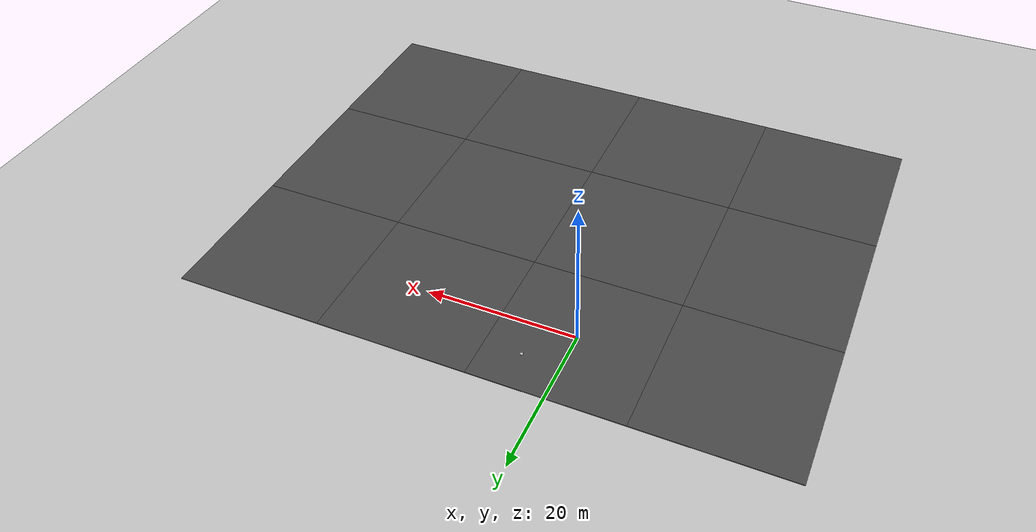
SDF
<sdf version="1.5">
 <world name="nsf-student-competition-test-world">
  <physics name="default_physics" default="0" type="ode">
   <max_step_size>0.001</max_step_size>
   <real_time_factor>1</real_time_factor>
   <real_time_update_rate>1000</real_time_update_rate>
   <gravity>0 0 -9.8</gravity>
   <magnetic_field>6e-06 2.3e-05 -4.2e-05</magnetic_field>
  </physics>
  <spherical_coordinates>
   <surface_model>EARTH_WGS84</surface_model>
   <latitude_deg>39.9413</latitude_deg>
   <longitude_deg>-75.1988</longitude_deg>
   <elevation>5.8</elevation>
   <heading_deg>5.458</heading_deg>
  </spherical_coordinates>
  <light name="sun" type="directional">
   <pose>0 0 10 0 -0 0</pose>
   <diffuse>0.8 0.8 0.8 1</diffuse>
   <specular>0.2 0.2 0.2 1</specular>
   <attenuation>
    <range>1000</range>
    <constant>0.9</constant>
    <linear>0.01</linear>
    <quadratic>0.001</quadratic>
   </attenuation>
   <direction>-0.5 0.1 -0.9</direction>
  </light>
  <model name="ground_plane">
   <static>1</static>
   <link name="link">
    <collision name="collision">
     <geometry><plane><normal>0 0 1</normal><size>100 100</size></plane></geometry>
     <surface><friction><ode><mu>100</mu><mu2>50</mu2></ode></friction></surface>
    </collision>
    <visual name="visual">
     <cast_shadows>0</cast_shadows>
     <geometry><plane><normal>0 0 1</normal><size>100 100</size></plane></geometry>
     <material>
      <script><uri>file://media/materials/scripts/gazebo.material</uri><name>Gazebo/Grey</name></script>
     </material>
    </visual>
   </link>
  </model>
  <model name="asphalt_plane">
   <static>1</static>
   <link name="link">
    <collision name="collision"><geometry><box><size>20 20 0.1</size></box></geometry></collision>
    <visual name="visual">
     <cast_shadows>0</cast_shadows>
     <geometry><box><size>20 20 0.1</size></box></geometry>
     <material>
      <script>
       <uri>model://asphalt_plane/materials/scripts</uri>
       <uri>model://asphalt_plane/materials/textures</uri>
       <name>vrc/asphalt</name>
      </script>
     </material>
    </visual>
   </link>
  </model>
  <model name="mosquito_trap">
   <pose>4.98919 5.00002 0.156586 -5e-06 -6e-06 0.000218</pose>
   <link name="link">
    <inertial>
     <mass>1</mass>
     <inertia><ixx>0.145833</ixx><ixy>0</ixy><ixz>0</ixz><iyy>0.145833</iyy><iyz>0</iyz><izz>0.125</izz></inertia>
    </inertial>
    <collision name="collision">
     <geometry><cylinder><radius>0.179215</radius><length>0.213191</length></cylinder></geometry>
    </collision>
    <visual name="visual">
     <geometry><cylinder><radius>0.179215</radius><length>0.213191</length></cylinder></geometry>
     <material>
      <script><name>Gazebo/White</name><uri>file://media/materials/scripts/gazebo.material</uri></script>
     </material>
    </visual>
   </link>
  </model>
  <scene><ambient>0.4 0.4 0.4 1</ambient><background>0.7 0.7 0.7 1</background><shadows>1</shadows></scene>
  <model name="asphalt_plane_0">
   <static>1</static>
   <link name="link">
    <collision name="collision"><geometry><box><size>20 20 0.1</size></box></geometry></collision>
    <visual name="visual">
     <cast_shadows>0</cast_shadows>
     <geometry><box><size>20 20 0.1</size></box></geometry>
     <material>
      <script>
       <uri>model://asphalt_plane/materials/scripts</uri>
       <uri>model://asphalt_plane/materials/textures</uri>
       <name>vrc/asphalt</name>
      </script>
     </material>
    </visual>
   </link>
   <pose>0 -20 0 0 -0 0</pose>
  </model>
  <model name="asphalt_plane_0_0">
   <static>1</static>
   <link name="link">
    <collision name="collision"><geometry><box><size>20 20 0.1</size></box></geometry></collision>
    <visual name="visual">
     <cast_shadows>0</cast_shadows>
     <geometry><box><size>20 20 0.1</size></box></geometry>
     <material>
      <script>
       <uri>model://asphalt_plane/materials/scripts</uri>
       <uri>model://asphalt_plane/materials/textures</uri>
       <name>vrc/asphalt</name>
      </script>
     </material>
    </visual>
   </link>
   <pose>20 0 0 0 -0 0</pose>
  </model>
  <model name="asphalt_plane_1">
   <static>1</static>
   <link name="link">
    <collision name="collision"><geometry><box><size>20 20 0.1</size></box></geometry></collision>
    <visual name="visual">
     <cast_shadows>0</cast_shadows>
     <geometry><box><size>20 20 0.1</size></box></geometry>
     <material>
      <script>
       <uri>model://asphalt_plane/materials/scripts</uri>
       <uri>model://asphalt_plane/materials/textures</uri>
       <name>vrc/asphalt</name>
      </script>
     </material>
    </visual>
   </link>
   <pose>20 -20 0 0 -0 0</pose>
  </model>
  <model name="asphalt_plane_2">
   <static>1</static>
   <link name="link">
    <collision name="collision"><geometry><box><size>20 20 0.1</size></box></geometry></collision>
    <visual name="visual">
     <cast_shadows>0</cast_shadows>
     <geometry><box><size>20 20 0.1</size></box></geometry>
     <material>
      <script>
       <uri>model://asphalt_plane/materials/scripts</uri>
       <uri>model://asphalt_plane/materials/textures</uri>
       <name>vrc/asphalt</name>
      </script>
     </material>
    </visual>
   </link>
   <pose>40 0 0 0 -0 0</pose>
  </model>
  <model name="asphalt_plane_3">
   <static>1</static>
   <link name="link">
    <collision name="collision"><geometry><box><size>20 20 0.1</size></box></geometry></collision>
    <visual name="visual">
     <cast_shadows>0</cast_shadows>
     <geometry><box><size>20 20 0.1</size></box></geometry>
     <material>
      <script>
       <uri>model://asphalt_plane/materials/scripts</uri>
       <uri>model://asphalt_plane/materials/textures</uri>
       <name>vrc/asphalt</name>
      </script>
     </material>
    </visual>
   </link>
   <pose>40 -20 0 0 -0 0</pose>
  </model>
  <model name="asphalt_plane_4">
   <static>1</static>
   <link name="link">
    <collision name="collision"><geometry><box><size>20 20 0.1</size></box></geometry></collision>
    <visual name="visual">
     <cast_shadows>0</cast_shadows>
     <geometry><box><size>20 20 0.1</size></box></geometry>
     <material>
      <script>
       <uri>model://asphalt_plane/materials/scripts</uri>
       <uri>model://asphalt_plane/materials/textures</uri>
       <name>vrc/asphalt</name>
      </script>
     </material>
    </visual>
   </link>
   <pose>40 -40 0 0 -0 0</pose>
  </model>
  <model name="asphalt_plane_5">
   <static>1</static>
   <link name="link">
    <collision name="collision"><geometry><box><size>20 20 0.1</size></box></geometry></collision>
    <visual name="visual">
     <cast_shadows>0</cast_shadows>
     <geometry><box><size>20 20 0.1</size></box></geometry>
     <material>
      <script>
       <uri>model://asphalt_plane/materials/scripts</uri>
       <uri>model://asphalt_plane/materials/textures</uri>
       <name>vrc/asphalt</name>
      </script>
     </material>
    </visual>
   </link>
   <pose>20 -40 0 0 -0 0</pose>
  </model>
  <model name="asphalt_plane_6">
   <static>1</static>
   <link name="link">
    <collision name="collision"><geometry><box><size>20 20 0.1</size></box></geometry></collision>
    <visual name="visual">
     <cast_shadows>0</cast_shadows>
     <geometry><box><size>20 20 0.1</size></box></geometry>
     <material>
      <script>
       <uri>model://asphalt_plane/materials/scripts</uri>
       <uri>model://asphalt_plane/materials/textures</uri>
       <name>vrc/asphalt</name>
      </script>
     </material>
    </visual>
   </link>
   <pose>0 -40 0 0 -0 0</pose>
  </model>
  <model name="asphalt_plane_7">
   <static>1</static>
   <link name="link">
    <collision name="collision"><geometry><box><size>20 20 0.1</size></box></geometry></collision>
    <visual name="visual">
     <cast_shadows>0</cast_shadows>
     <geometry><box><size>20 20 0.1</size></box></geometry>
     <material>
      <script>
       <uri>model://asphalt_plane/materials/scripts</uri>
       <uri>model://asphalt_plane/materials/textures</uri>
       <name>vrc/asphalt</name>
      </script>
     </material>
    </visual>
   </link>
   <pose>-20 -40 0 0 -0 0</pose>
  </model>
  <model name="asphalt_plane_8">
   <static>1</static>
   <link name="link">
    <collision name="collision"><geometry><box><size>20 20 0.1</size></box></geometry></collision>
    <visual name="visual">
     <cast_shadows>0</cast_shadows>
     <geometry><box><size>20 20 0.1</size></box></geometry>
     <material>
      <script>
       <uri>model://asphalt_plane/materials/scripts</uri>
       <uri>model://asphalt_plane/materials/textures</uri>
       <name>vrc/asphalt</name>
      </script>
     </material>
    </visual>
   </link>
   <pose>-20 -20 0 0 -0 0</pose>
  </model>
  <model name="asphalt_plane_9">
   <static>1</static>
   <link name="link">
    <collision name="collision"><geometry><box><size>20 20 0.1</size></box></geometry></collision>
    <visual name="visual">
     <cast_shadows>0</cast_shadows>
     <geometry><box><size>20 20 0.1</size></box></geometry>
     <material>
      <script>
       <uri>model://asphalt_plane/materials/scripts</uri>
       <uri>model://asphalt_plane/materials/textures</uri>
       <name>vrc/asphalt</name>
      </script>
     </material>
    </visual>
   </link>
   <pose>-20 0 0 0 -0 0</pose>
  </model>
 </world>
</sdf>
